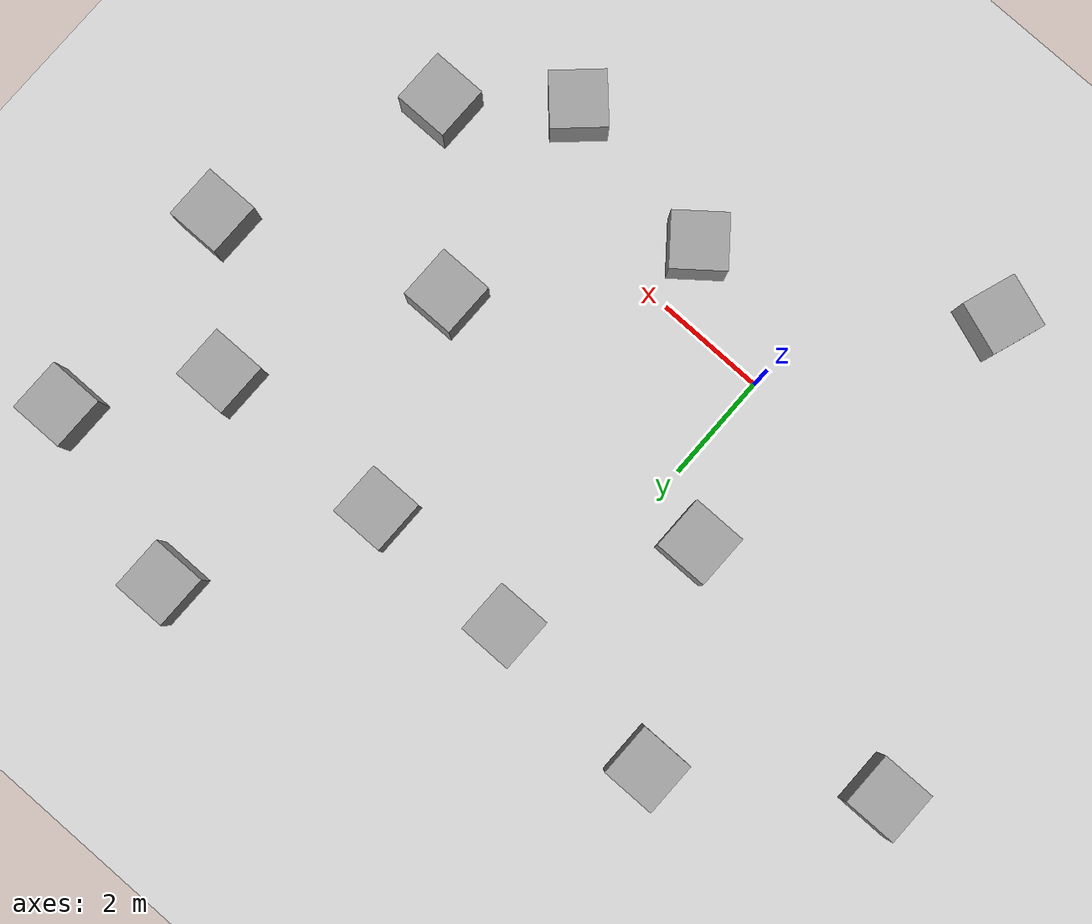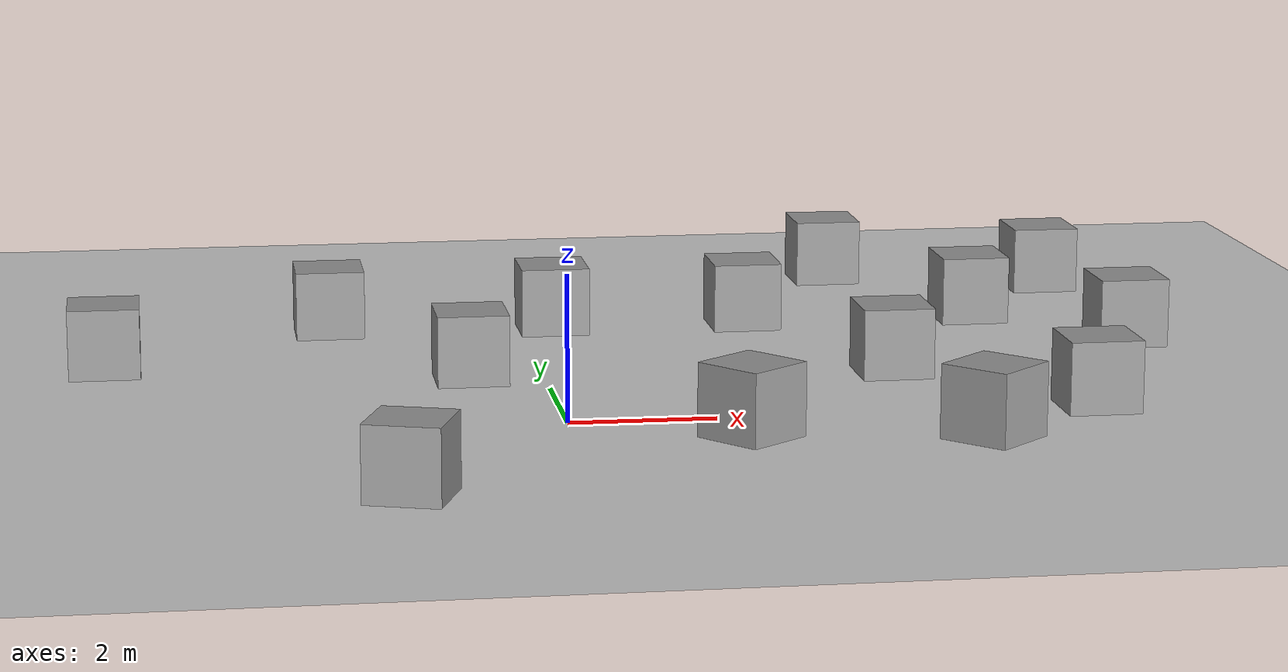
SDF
<sdf version="1.6">
 <world name="default">
  <light name="sun" type="directional">
   <pose>0 0 10 0 -0 0</pose>
   <diffuse>0.8 0.8 0.8 1</diffuse>
   <specular>0.2 0.2 0.2 1</specular>
   <attenuation>
    <range>1000</range>
    <constant>0.9</constant>
    <linear>0.01</linear>
    <quadratic>0.001</quadratic>
   </attenuation>
   <direction>-0.5 0.1 -0.9</direction>
  </light>
  <model name="ground_plane">
   <static>1</static>
   <link name="link">
    <collision name="collision">
     <geometry><plane><normal>0 0 1</normal><size>100 100</size></plane></geometry>
     <surface>
      <contact><collide_bitmask>65535</collide_bitmask></contact>
      <friction><ode><mu>100</mu><mu2>50</mu2></ode></friction>
     </surface>
    </collision>
    <visual name="visual">
     <cast_shadows>0</cast_shadows>
     <geometry><plane><normal>0 0 1</normal><size>100 100</size></plane></geometry>
     <material>
      <script><uri>file://media/materials/scripts/gazebo.material</uri><name>Gazebo/Grey</name></script>
     </material>
    </visual>
   </link>
  </model>
  <gravity>0 0 -9.8</gravity>
  <magnetic_field>6e-06 2.3e-05 -4.2e-05</magnetic_field>
  <atmosphere type="adiabatic"/>
  <physics name="default_physics" default="0" type="ode">
   <max_step_size>0.001</max_step_size>
   <real_time_factor>1</real_time_factor>
   <real_time_update_rate>1000</real_time_update_rate>
  </physics>
  <scene><ambient>0.4 0.4 0.4 1</ambient><background>0.7 0.7 0.7 1</background><shadows>1</shadows></scene>
  <audio><device>default</device></audio>
  <spherical_coordinates>
   <surface_model>EARTH_WGS84</surface_model>
   <latitude_deg>0</latitude_deg>
   <longitude_deg>0</longitude_deg>
   <elevation>0</elevation>
   <heading_deg>0</heading_deg>
  </spherical_coordinates>
  <model name="unit_box">
   <pose>-1.03408 2.73121 0.499995 1e-05 -0 0</pose>
   <link name="link">
    <inertial>
     <mass>1</mass>
     <inertia>
      <ixx>0.166667</ixx>
      <ixy>0</ixy>
      <ixz>0</ixz>
      <iyy>0.166667</iyy>
      <iyz>0</iyz>
      <izz>0.166667</izz>
     </inertia>
    </inertial>
    <collision name="collision"><geometry><box><size>1 1 1</size></box></geometry></collision>
    <visual name="visual">
     <geometry><box><size>1 1 1</size></box></geometry>
     <material>
      <script><name>Gazebo/Grey</name><uri>file://media/materials/scripts/gazebo.material</uri></script>
     </material>
    </visual>
   </link>
  </model>
  <model name="unit_box_1">
   <pose>5.23079 9.11651 0.499995 -1e-05 -0 -0</pose>
   <link name="link">
    <inertial>
     <mass>1</mass>
     <inertia>
      <ixx>0.166667</ixx>
      <ixy>0</ixy>
      <ixz>0</ixz>
      <iyy>0.166667</iyy>
      <iyz>0</iyz>
      <izz>0.166667</izz>
     </inertia>
    </inertial>
    <collision name="collision"><geometry><box><size>1 1 1</size></box></geometry></collision>
    <visual name="visual">
     <geometry><box><size>1 1 1</size></box></geometry>
     <material>
      <script><name>Gazebo/Grey</name><uri>file://media/materials/scripts/gazebo.material</uri></script>
     </material>
    </visual>
   </link>
  </model>
  <model name="unit_box_2">
   <pose>-2.82104 6.09997 0.499995 0 1e-05 0</pose>
   <link name="link">
    <inertial>
     <mass>1</mass>
     <inertia>
      <ixx>0.166667</ixx>
      <ixy>0</ixy>
      <ixz>0</ixz>
      <iyy>0.166667</iyy>
      <iyz>0</iyz>
      <izz>0.166667</izz>
     </inertia>
    </inertial>
    <collision name="collision"><geometry><box><size>1 1 1</size></box></geometry></collision>
    <visual name="visual">
     <geometry><box><size>1 1 1</size></box></geometry>
     <material>
      <script><name>Gazebo/Grey</name><uri>file://media/materials/scripts/gazebo.material</uri></script>
     </material>
    </visual>
   </link>
  </model>
  <model name="unit_box_3">
   <pose>2.27273 -1.07241 0.5 0 -0 -0.897467</pose>
   <link name="link">
    <inertial>
     <mass>1</mass>
     <inertia>
      <ixx>0.166667</ixx>
      <ixy>0</ixy>
      <ixz>0</ixz>
      <iyy>0.166667</iyy>
      <iyz>0</iyz>
      <izz>0.166667</izz>
     </inertia>
    </inertial>
    <collision name="collision"><geometry><box><size>1 1 1</size></box></geometry></collision>
    <visual name="visual">
     <geometry><box><size>1 1 1</size></box></geometry>
     <material>
      <script><name>Gazebo/Grey</name><uri>file://media/materials/scripts/gazebo.material</uri></script>
     </material>
    </visual>
   </link>
  </model>
  <model name="unit_box_4">
   <pose>4.88718 2.35719 0.499995 0 1e-05 0</pose>
   <link name="link">
    <inertial>
     <mass>1</mass>
     <inertia>
      <ixx>0.166667</ixx>
      <ixy>0</ixy>
      <ixz>0</ixz>
      <iyy>0.166667</iyy>
      <iyz>0</iyz>
      <izz>0.166667</izz>
     </inertia>
    </inertial>
    <collision name="collision"><geometry><box><size>1 1 1</size></box></geometry></collision>
    <visual name="visual">
     <geometry><box><size>1 1 1</size></box></geometry>
     <material>
      <script><name>Gazebo/Grey</name><uri>file://media/materials/scripts/gazebo.material</uri></script>
     </material>
    </visual>
   </link>
  </model>
  <model name="unit_box_5">
   <pose>3.35742 5.83624 0.499995 0 1e-05 0</pose>
   <link name="link">
    <inertial>
     <mass>1</mass>
     <inertia>
      <ixx>0.166667</ixx>
      <ixy>0</ixy>
      <ixz>0</ixz>
      <iyy>0.166667</iyy>
      <iyz>0</iyz>
      <izz>0.166667</izz>
     </inertia>
    </inertial>
    <collision name="collision"><geometry><box><size>1 1 1</size></box></geometry></collision>
    <visual name="visual">
     <geometry><box><size>1 1 1</size></box></geometry>
     <material>
      <script><name>Gazebo/Grey</name><uri>file://media/materials/scripts/gazebo.material</uri></script>
     </material>
    </visual>
   </link>
  </model>
  <model name="unit_box_6">
   <pose>0.486424 5.88866 0.499995 0 1e-05 0</pose>
   <link name="link">
    <inertial>
     <mass>1</mass>
     <inertia>
      <ixx>0.166667</ixx>
      <ixy>0</ixy>
      <ixz>0</ixz>
      <iyy>0.166667</iyy>
      <iyz>0</iyz>
      <izz>0.166667</izz>
     </inertia>
    </inertial>
    <collision name="collision"><geometry><box><size>1 1 1</size></box></geometry></collision>
    <visual name="visual">
     <geometry><box><size>1 1 1</size></box></geometry>
     <material>
      <script><name>Gazebo/Grey</name><uri>file://media/materials/scripts/gazebo.material</uri></script>
     </material>
    </visual>
   </link>
  </model>
  <model name="unit_box_7">
   <pose>-2.34815 -3.47274 0.5 0 0 -0.329298</pose>
   <link name="link">
    <inertial>
     <mass>1</mass>
     <inertia>
      <ixx>0.166667</ixx>
      <ixy>0</ixy>
      <ixz>0</ixz>
      <iyy>0.166667</iyy>
      <iyz>0</iyz>
      <izz>0.166667</izz>
     </inertia>
    </inertial>
    <collision name="collision"><geometry><box><size>1 1 1</size></box></geometry></collision>
    <visual name="visual">
     <geometry><box><size>1 1 1</size></box></geometry>
     <material>
      <script><name>Gazebo/Grey</name><uri>file://media/materials/scripts/gazebo.material</uri></script>
     </material>
    </visual>
   </link>
  </model>
  <model name="unit_box_8">
   <pose>-6.09453 3.85935 0.499995 1e-05 -0 0</pose>
   <link name="link">
    <inertial>
     <mass>1</mass>
     <inertia>
      <ixx>0.166667</ixx>
      <ixy>0</ixy>
      <ixz>0</ixz>
      <iyy>0.166667</iyy>
      <iyz>0</iyz>
      <izz>0.166667</izz>
     </inertia>
    </inertial>
    <collision name="collision"><geometry><box><size>1 1 1</size></box></geometry></collision>
    <visual name="visual">
     <geometry><box><size>1 1 1</size></box></geometry>
     <material>
      <script><name>Gazebo/Grey</name><uri>file://media/materials/scripts/gazebo.material</uri></script>
     </material>
    </visual>
   </link>
  </model>
  <model name="unit_box_15">
   <pose>7.17734 -0.067991 0.499995 0 1e-05 0</pose>
   <link name="link">
    <inertial>
     <mass>1</mass>
     <inertia>
      <ixx>0.166667</ixx>
      <ixy>0</ixy>
      <ixz>0</ixz>
      <iyy>0.166667</iyy>
      <iyz>0</iyz>
      <izz>0.166667</izz>
     </inertia>
    </inertial>
    <collision name="collision"><geometry><box><size>1 1 1</size></box></geometry></collision>
    <visual name="visual">
     <geometry><box><size>1 1 1</size></box></geometry>
     <material>
      <script><name>Gazebo/Grey</name><uri>file://media/materials/scripts/gazebo.material</uri></script>
     </material>
    </visual>
   </link>
  </model>
  <model name="unit_box_16">
   <pose>6.83361 5.85806 0.499995 0 1e-05 0</pose>
   <link name="link">
    <inertial>
     <mass>1</mass>
     <inertia>
      <ixx>0.166667</ixx>
      <ixy>0</ixy>
      <ixz>0</ixz>
      <iyy>0.166667</iyy>
      <iyz>0</iyz>
      <izz>0.166667</izz>
     </inertia>
    </inertial>
    <collision name="collision"><geometry><box><size>1 1 1</size></box></geometry></collision>
    <visual name="visual">
     <geometry><box><size>1 1 1</size></box></geometry>
     <material>
      <script><name>Gazebo/Grey</name><uri>file://media/materials/scripts/gazebo.material</uri></script>
     </material>
    </visual>
   </link>
  </model>
  <model name="unit_box_17">
   <pose>5.37957 -1.54851 0.5 -0 -0 -0.82122</pose>
   <link name="link">
    <inertial>
     <mass>1</mass>
     <inertia>
      <ixx>0.166667</ixx>
      <ixy>0</ixy>
      <ixz>0</ixz>
      <iyy>0.166667</iyy>
      <iyz>0</iyz>
      <izz>0.166667</izz>
     </inertia>
    </inertial>
    <collision name="collision"><geometry><box><size>1 1 1</size></box></geometry></collision>
    <visual name="visual">
     <geometry><box><size>1 1 1</size></box></geometry>
     <material>
      <script><name>Gazebo/Grey</name><uri>file://media/materials/scripts/gazebo.material</uri></script>
     </material>
    </visual>
   </link>
  </model>
  <model name="unit_box_18">
   <pose>8.49404 8.05204 0.499995 1e-05 -0 0</pose>
   <link name="link">
    <inertial>
     <mass>1</mass>
     <inertia>
      <ixx>0.166667</ixx>
      <ixy>0</ixy>
      <ixz>0</ixz>
      <iyy>0.166667</iyy>
      <iyz>0</iyz>
      <izz>0.166667</izz>
     </inertia>
    </inertial>
    <collision name="collision"><geometry><box><size>1 1 1</size></box></geometry></collision>
    <visual name="visual">
     <geometry><box><size>1 1 1</size></box></geometry>
     <material>
      <script><name>Gazebo/Grey</name><uri>file://media/materials/scripts/gazebo.material</uri></script>
     </material>
    </visual>
   </link>
  </model>
  <model name="unit_box_22">
   <pose>8.72831 3.92735 0.499995 0 -1e-05 0</pose>
   <link name="link">
    <inertial>
     <mass>1</mass>
     <inertia>
      <ixx>0.166667</ixx>
      <ixy>0</ixy>
      <ixz>0</ixz>
      <iyy>0.166667</iyy>
      <iyz>0</iyz>
      <izz>0.166667</izz>
     </inertia>
    </inertial>
    <collision name="collision"><geometry><box><size>1 1 1</size></box></geometry></collision>
    <visual name="visual">
     <geometry><box><size>1 1 1</size></box></geometry>
     <material>
      <script><name>Gazebo/Grey</name><uri>file://media/materials/scripts/gazebo.material</uri></script>
     </material>
    </visual>
   </link>
  </model>
 </world>
</sdf>
